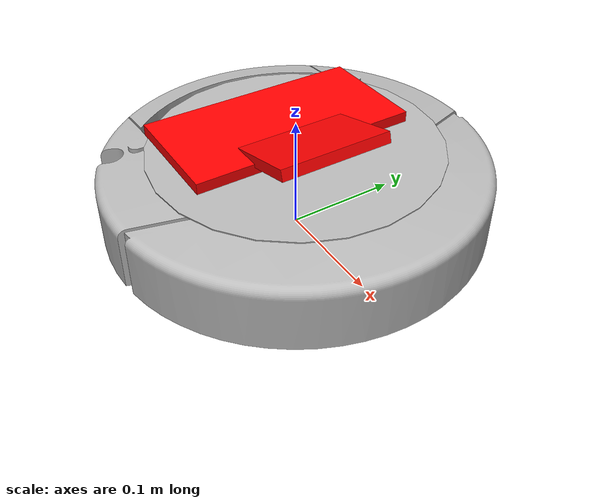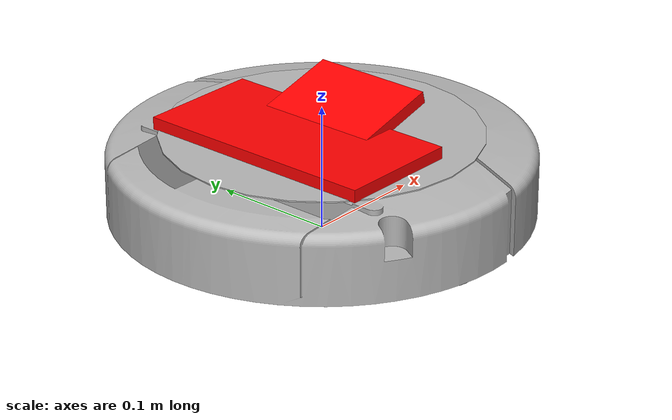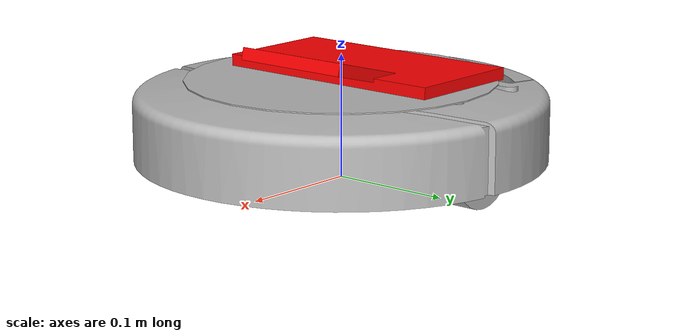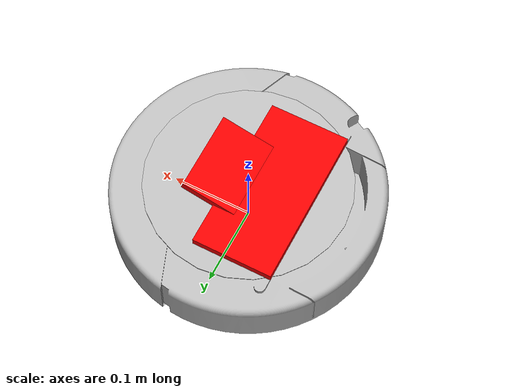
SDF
<?xml version="1.0" ?>
<sdf version="1.4">
  <model name="create">
    <link name="base">
      <inertial>
        <pose>0.001453 -0.000453 0.029787 0 0 0</pose>
        <inertia>
          <ixx>0.058640</ixx>
          <ixy>0.000124</ixy>
          <ixz>0.000615</ixz>
          <iyy>0.058786</iyy>
          <iyz>0.000014</iyz>
          <izz>1.532440</izz>
        </inertia>
        <mass>2.234000</mass>
      </inertial>

      <collision name="base_collision">
        <pose>0 0 0.047800 0 0 0</pose>
        <geometry>
          <mesh>
            <uri>model://create/meshes/create_body.dae</uri>
          </mesh>
        </geometry>
      </collision>
      <visual name="base_visual">
        <pose>0 0 0.047800 0 0 0</pose>
        <geometry>
          <mesh>
            <uri>model://create/meshes/create_body.dae</uri>
          </mesh>
        </geometry>
      </visual>

      <collision name="front_wheel_collision">
        <pose>0.130000 0 0.017000 0 1.570700 1.570700</pose>
        <geometry>
          <sphere>
            <radius>0.018000</radius>
          </sphere>
        </geometry>
        <surface>
          <friction>
            <ode>
              <mu>0</mu>
              <mu2>0</mu2>
              <fdir1>0 0 0</fdir1>
              <slip1>0</slip1>
              <slip2>0</slip2>
            </ode>
          </friction>
        </surface>
      </collision>
      <visual name="front_wheel_visual">
        <pose>0.130000 0 0.017000 0 1.570700 1.570700</pose>
        <geometry>
          <sphere>
            <radius>0.009000</radius>
          </sphere>
        </geometry>
      </visual>

      <collision name="rear_wheel_collision">
        <pose>-0.13 0 0.017 0 1.5707 1.5707</pose>
        <geometry>
          <sphere>
            <radius>0.015000</radius>
          </sphere>
        </geometry>
        <surface>
          <friction>
            <ode>
              <mu>0</mu>
              <mu2>0</mu2>
              <fdir1>0 0 0</fdir1>
              <slip1>0</slip1>
              <slip2>0</slip2>
            </ode>
          </friction>
        </surface>
      </collision>
      <visual name="rear_wheel_visual">
        <pose>-0.130000 0 0.017000 0 1.570700 1.570700</pose>
        <geometry>
          <sphere>
            <radius>0.007500</radius>
          </sphere>
        </geometry>
      </visual>

      <sensor name="left_cliff_sensor" type="ray">
        <pose>0.070000 0.140000 0.027000 0 1.570790 0</pose>
        <ray>
          <scan>
            <horizontal>
              <samples>1</samples>
              <resolution>1.000000</resolution>
              <min_angle>0</min_angle>
              <max_angle>0</max_angle>
            </horizontal>
          </scan>
          <range>
            <min>0.010000</min>
            <max>0.040000</max>
            <resolution>0.100000</resolution>
          </range>
        </ray>
      </sensor>

      <sensor name="leftfront_cliff_sensor" type="ray">
        <pose>0.150000 0.040000 0.027000 0 1.570790 0</pose>
        <ray>
          <scan>
            <horizontal>
              <samples>1</samples>
              <resolution>1.000000</resolution>
              <min_angle>0</min_angle>
              <max_angle>0</max_angle>
            </horizontal>
          </scan>
          <range>
            <min>0.010000</min>
            <max>0.040000</max>
            <resolution>0.100000</resolution>
          </range>
        </ray>
      </sensor>

      <sensor name="right_cliff_sensor" type="ray">
        <pose>0.070000 -0.140000 0.027000 0 1.570790 0</pose>
        <ray>
          <scan>
            <horizontal>
              <samples>1</samples>
              <resolution>1.000000</resolution>
              <min_angle>0</min_angle>
              <max_angle>0</max_angle>
            </horizontal>
          </scan>
          <range>
            <min>0.010000</min>
            <max>0.040000</max>
            <resolution>0.100000</resolution>
          </range>
        </ray>
      </sensor>

      <sensor name="rightfront_cliff_sensor" type="ray">
        <pose>0.150000 -0.040000 0.027000 0 1.570790 0</pose>
        <ray>
          <scan>
            <horizontal>
              <samples>1</samples>
              <resolution>1.000000</resolution>
              <min_angle>0</min_angle>
              <max_angle>0</max_angle>
            </horizontal>
          </scan>
          <range>
            <min>0.010000</min>
            <max>0.040000</max>
            <resolution>0.100000</resolution>
          </range>
        </ray>
      </sensor>

      <sensor name="wall_sensor" type="ray">
        <pose>0.090000 -0.120000 0.059000 0 0 -1.000000</pose>
        <ray>
          <scan>
            <horizontal>
              <samples>1</samples>
              <resolution>1.000000</resolution>
              <min_angle>0</min_angle>
              <max_angle>0</max_angle>
            </horizontal>
          </scan>
          <range>
            <min>0.016000</min>
            <max>0.040000</max>
            <resolution>0.100000</resolution>
          </range>
        </ray>
      </sensor>

      <sensor name='my_contact' type='contact'>
      	<plugin name="my_plugin" filename="libcontact.so"/>
          <contact>
            <collision>base_collision</collision>
          </contact>
          <update_rate> 5 </update_rate>
      </sensor>

    </link>

    <link name="left_wheel">
      <pose>0 0.130000 0.032000 0 0 0</pose>
      <inertial>
        <inertia>
          <ixx>0.001000</ixx>
          <ixy>0</ixy>
          <ixz>0</ixz>
          <iyy>0.001000</iyy>
          <iyz>0</iyz>
          <izz>0.001000</izz>
        </inertia>
        <mass>0.010000</mass>
      </inertial>
      <collision name="collision">
        <pose>0 0 0 0 1.570700 1.570700</pose>
        <geometry>
          <cylinder>
            <radius>0.033000</radius>
            <length>0.023000</length>
          </cylinder>
        </geometry>
        <surface>
          <friction>
            <ode>
              <mu>10</mu>
              <mu2>10</mu2>
              <fdir1>0 0 0</fdir1>
              <slip1>0</slip1>
              <slip2>0</slip2>
            </ode>
          </friction>
        </surface>
      </collision>
      <visual name="visual">
        <pose>0 0 0 0 1.570700 1.570700</pose>
        <geometry>
          <cylinder>
            <radius>0.033000</radius>
            <length>0.023000</length>
          </cylinder>
        </geometry>
      </visual>
    </link>

    <link name="right_wheel">
      <pose>0 -0.130000 0.032000 0 0 0</pose>
      <inertial>
        <inertia>
          <ixx>0.001000</ixx>
          <ixy>0</ixy>
          <ixz>0</ixz>
          <iyy>0.001000</iyy>
          <iyz>0</iyz>
          <izz>0.001000</izz>
        </inertia>
        <mass>0.010000</mass>
      </inertial>
      <collision name="collision">
        <pose>0 0 0 0 1.570700 1.570700</pose>
        <geometry>
          <cylinder>
            <radius>0.033000</radius>
            <length>0.023000</length>
          </cylinder>
        </geometry>
        <surface>
          <friction>
            <ode>
              <mu>10</mu>
              <mu2>10</mu2>
              <fdir1>0 0 0</fdir1>
              <slip1>0</slip1>
              <slip2>0</slip2>
            </ode>
          </friction>
        </surface>
      </collision>
      <visual name="visual">
        <pose>0 0 0 0 1.570700 1.570700</pose>
        <geometry>
          <cylinder>
            <radius>0.033000</radius>
            <length>0.023000</length>
          </cylinder>
        </geometry>
      </visual>
    </link>

    <link name="top_sensor">
        <pose>0 0 0.08 0 0 0</pose>
        <collision name="top_collision">
          <geometry>
            <cylinder>
              <radius>0.125</radius>
              <length>0.1</length>
            </cylinder>
          </geometry>
        </collision>
        <visual name="visual">
          <geometry>
            <cylinder>
              <radius>0.125</radius>
              <length>0.001</length>
            </cylinder>
          </geometry>
        </visual>
        <sensor name='my_contact_top' type='contact'>
        <plugin name="my_plugin" filename="libcontact.so"/>
          <contact>
            <collision>top_collision</collision>
          </contact>
          <update_rate> 5 </update_rate>
      </sensor>
      </link>

    <joint name="left_wheel" type="revolute">
      <parent>base</parent>
      <child>left_wheel</child>
      <axis>
        <xyz>0 1 0</xyz>
      </axis>
    </joint>

    <joint name="right_wheel" type="revolute">
      <parent>base</parent>
      <child>right_wheel</child>
      <axis>
        <xyz>0 1 0</xyz>
      </axis>
    </joint>

    <joint name="top_sensor_joint" type="revolute">
      <parent>base</parent>
      <child>top_sensor</child>
      <axis>
        <xyz>1 0 0</xyz>
        <limit>
          <upper>0</upper>
          <lower>0</lower>
        </limit>
      </axis>
    </joint>

    <plugin name="differential_drive_controller" filename="libgazebo_ros_diff_drive.so">
      <alwaysOn>true</alwaysOn>
      <updateRate>10</updateRate>
      <leftJoint>left_wheel</leftJoint>
      <rightJoint>right_wheel</rightJoint>
      <wheelSeparation>0.5380</wheelSeparation>
      <wheelDiameter>0.2410</wheelDiameter>
      <torque>20</torque>
      <commandTopic>cmd_vel</commandTopic>
      <odometryTopic>odom</odometryTopic>
      <odometryFrame>odom</odometryFrame>
      <robotBaseFrame>base_footprint</robotBaseFrame>
      </plugin>

    <link name="top_plate">
      <pose>-0.03 0 0.085 0 0 0</pose>
      <collision name="collision">
        <geometry>
          <box>
            <size>0.1 0.2 0.01</size>
          </box>
        </geometry>
      </collision>
      <visual name="visual">
        <geometry>
          <box>
            <size>0.1 0.2 0.01</size>
          </box>
        </geometry>
        <material>
          <ambient>1 0 .1 1</ambient>
          <diffuse>1 0 0 1</diffuse>
          <specular>0.1 0.1 0.1 1</specular>
          <emissive>0 0 0 0</emissive>
        </material>
      </visual>
    </link>

    <link name="touch_button">
      <pose>.012 0 0.09 0 -0.2617 0</pose>
      <collision name="collision">
        <geometry>
          <box>
            <size>0.075 0.075 0.01</size>
          </box>
        </geometry>
      </collision>
      <visual name="visual">
        <geometry>
          <box>
            <size>0.1 0.1 0.01</size>
          </box>
        </geometry>
        <material>
          <ambient>1 0 .1 1</ambient>
          <diffuse>1 0 0 1</diffuse>
          <specular>0.1 0.1 0.1 1</specular>
          <emissive>0 0 0 0</emissive>
        </material>
      </visual>
    </link>

    <joint type="revolute" name="tp_joint">
      <child>top_plate</child>
      <parent>base</parent>
      <axis>
        <xyz>0 0 0</xyz>
        <limit>
        <upper>0</upper>
        <lower>0</lower>
      </limit>
      </axis>
    </joint>

    <joint type="revolute" name="tb_joint">
      <child>touch_button</child>
      <parent>base</parent>
      <axis>
        <xyz>0 0 0</xyz>
        <limit>
        <upper>0</upper>
        <lower>0</lower>
      </limit>
      </axis>
    </joint>

  </model>

</sdf>
